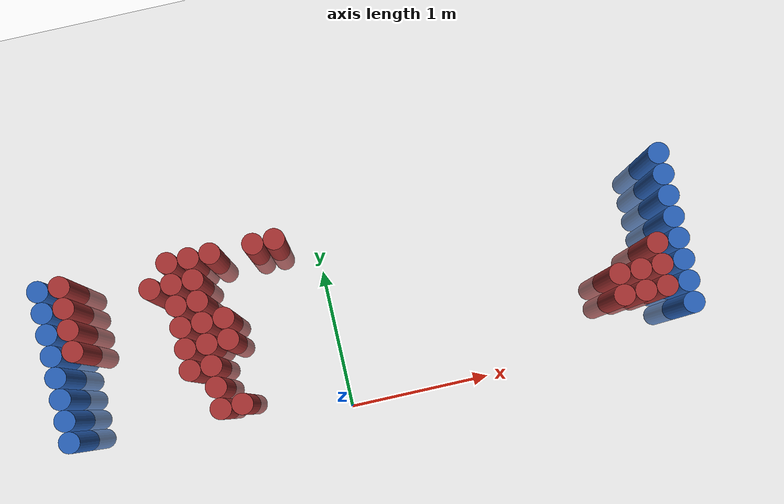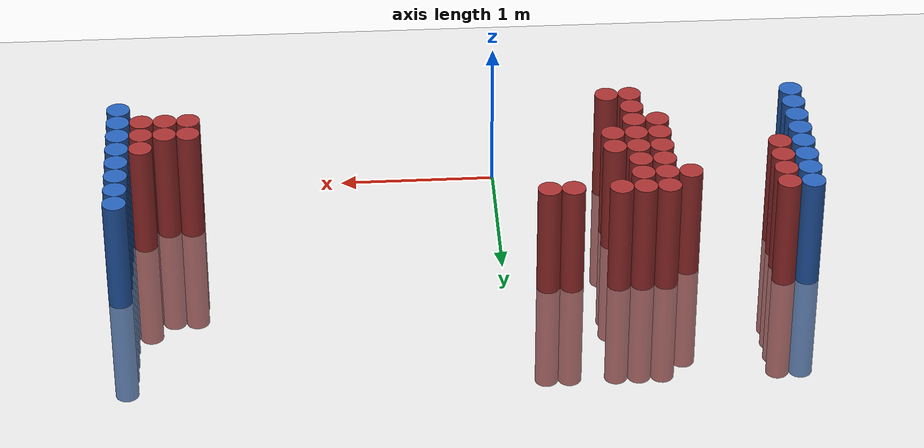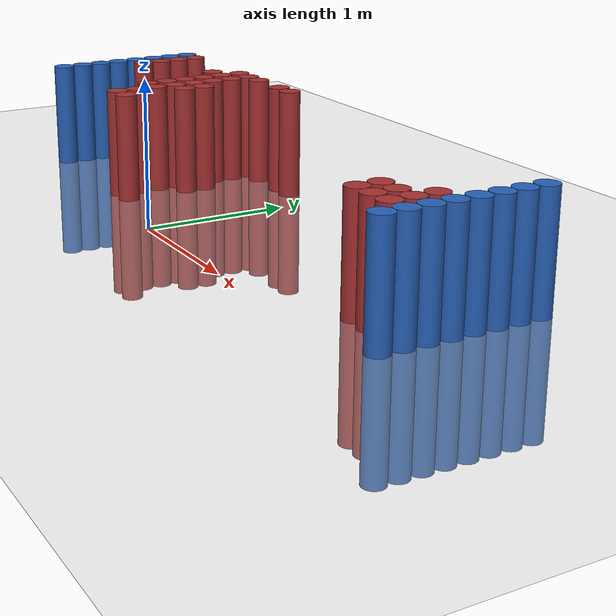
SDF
<sdf version="1.6">
 <world name="default">
  <model name="ground_plane">
   <static>1</static>
   <link name="link">
    <collision name="collision">
     <geometry><plane><normal>0 0 1</normal><size>100 100</size></plane></geometry>
     <surface><friction><ode><mu>100</mu><mu2>50</mu2></ode></friction></surface>
    </collision>
    <visual name="visual">
     <cast_shadows>0</cast_shadows>
     <geometry><plane><normal>0 0 1</normal><size>100 100</size></plane></geometry>
     <material>
      <script><uri>file://media/materials/scripts/gazebo.material</uri><name>Gazebo/Grey</name></script>
     </material>
    </visual>
   </link>
  </model>
  <model name="unit_cylinder_96">
   <static>1</static>
   <pose>-1.925000 0.175000 0.000000 0.000000 0.000000 0.000000</pose>
   <link name="link">
    <inertial>
     <mass>1</mass>
     <inertia><ixx>0.145833</ixx><ixy>0</ixy><ixz>0</ixz><iyy>0.145833</iyy><iyz>0</iyz><izz>0.125</izz></inertia>
    </inertial>
    <collision name="collision">
     <geometry><cylinder><radius>0.075000</radius><length>1.5</length></cylinder></geometry>
    </collision>
    <visual name="visual">
     <geometry><cylinder><radius>0.075000</radius><length>1.5</length></cylinder></geometry>
     <material>
      <ambient>0.152000 0.379000 0.720000 1</ambient>
      <diffuse>0.152000 0.379000 0.720000 1</diffuse>
     </material>
     <material>
      <script><name>Gazebo/Grey</name><uri>file://media/materials/scripts/gazebo.material</uri></script>
     </material>
    </visual>
   </link>
  </model>
  <model name="unit_cylinder_97">
   <static>1</static>
   <pose>-1.925000 0.325000 0.000000 0.000000 0.000000 0.000000</pose>
   <link name="link">
    <inertial>
     <mass>1</mass>
     <inertia><ixx>0.145833</ixx><ixy>0</ixy><ixz>0</ixz><iyy>0.145833</iyy><iyz>0</iyz><izz>0.125</izz></inertia>
    </inertial>
    <collision name="collision">
     <geometry><cylinder><radius>0.075000</radius><length>1.5</length></cylinder></geometry>
    </collision>
    <visual name="visual">
     <geometry><cylinder><radius>0.075000</radius><length>1.5</length></cylinder></geometry>
     <material>
      <ambient>0.152000 0.379000 0.720000 1</ambient>
      <diffuse>0.152000 0.379000 0.720000 1</diffuse>
     </material>
     <material>
      <script><name>Gazebo/Grey</name><uri>file://media/materials/scripts/gazebo.material</uri></script>
     </material>
    </visual>
   </link>
  </model>
  <model name="unit_cylinder_98">
   <static>1</static>
   <pose>-1.925000 0.475000 0.000000 0.000000 0.000000 0.000000</pose>
   <link name="link">
    <inertial>
     <mass>1</mass>
     <inertia><ixx>0.145833</ixx><ixy>0</ixy><ixz>0</ixz><iyy>0.145833</iyy><iyz>0</iyz><izz>0.125</izz></inertia>
    </inertial>
    <collision name="collision">
     <geometry><cylinder><radius>0.075000</radius><length>1.5</length></cylinder></geometry>
    </collision>
    <visual name="visual">
     <geometry><cylinder><radius>0.075000</radius><length>1.5</length></cylinder></geometry>
     <material>
      <ambient>0.152000 0.379000 0.720000 1</ambient>
      <diffuse>0.152000 0.379000 0.720000 1</diffuse>
     </material>
     <material>
      <script><name>Gazebo/Grey</name><uri>file://media/materials/scripts/gazebo.material</uri></script>
     </material>
    </visual>
   </link>
  </model>
  <model name="unit_cylinder_99">
   <static>1</static>
   <pose>-1.925000 0.625000 0.000000 0.000000 0.000000 0.000000</pose>
   <link name="link">
    <inertial>
     <mass>1</mass>
     <inertia><ixx>0.145833</ixx><ixy>0</ixy><ixz>0</ixz><iyy>0.145833</iyy><iyz>0</iyz><izz>0.125</izz></inertia>
    </inertial>
    <collision name="collision">
     <geometry><cylinder><radius>0.075000</radius><length>1.5</length></cylinder></geometry>
    </collision>
    <visual name="visual">
     <geometry><cylinder><radius>0.075000</radius><length>1.5</length></cylinder></geometry>
     <material>
      <ambient>0.152000 0.379000 0.720000 1</ambient>
      <diffuse>0.152000 0.379000 0.720000 1</diffuse>
     </material>
     <material>
      <script><name>Gazebo/Grey</name><uri>file://media/materials/scripts/gazebo.material</uri></script>
     </material>
    </visual>
   </link>
  </model>
  <model name="unit_cylinder_100">
   <static>1</static>
   <pose>-1.925000 0.775000 0.000000 0.000000 0.000000 0.000000</pose>
   <link name="link">
    <inertial>
     <mass>1</mass>
     <inertia><ixx>0.145833</ixx><ixy>0</ixy><ixz>0</ixz><iyy>0.145833</iyy><iyz>0</iyz><izz>0.125</izz></inertia>
    </inertial>
    <collision name="collision">
     <geometry><cylinder><radius>0.075000</radius><length>1.5</length></cylinder></geometry>
    </collision>
    <visual name="visual">
     <geometry><cylinder><radius>0.075000</radius><length>1.5</length></cylinder></geometry>
     <material>
      <ambient>0.152000 0.379000 0.720000 1</ambient>
      <diffuse>0.152000 0.379000 0.720000 1</diffuse>
     </material>
     <material>
      <script><name>Gazebo/Grey</name><uri>file://media/materials/scripts/gazebo.material</uri></script>
     </material>
    </visual>
   </link>
  </model>
  <model name="unit_cylinder_101">
   <static>1</static>
   <pose>-1.925000 0.925000 0.000000 0.000000 0.000000 0.000000</pose>
   <link name="link">
    <inertial>
     <mass>1</mass>
     <inertia><ixx>0.145833</ixx><ixy>0</ixy><ixz>0</ixz><iyy>0.145833</iyy><iyz>0</iyz><izz>0.125</izz></inertia>
    </inertial>
    <collision name="collision">
     <geometry><cylinder><radius>0.075000</radius><length>1.5</length></cylinder></geometry>
    </collision>
    <visual name="visual">
     <geometry><cylinder><radius>0.075000</radius><length>1.5</length></cylinder></geometry>
     <material>
      <ambient>0.152000 0.379000 0.720000 1</ambient>
      <diffuse>0.152000 0.379000 0.720000 1</diffuse>
     </material>
     <material>
      <script><name>Gazebo/Grey</name><uri>file://media/materials/scripts/gazebo.material</uri></script>
     </material>
    </visual>
   </link>
  </model>
  <model name="unit_cylinder_102">
   <static>1</static>
   <pose>-1.925000 1.075000 0.000000 0.000000 0.000000 0.000000</pose>
   <link name="link">
    <inertial>
     <mass>1</mass>
     <inertia><ixx>0.145833</ixx><ixy>0</ixy><ixz>0</ixz><iyy>0.145833</iyy><iyz>0</iyz><izz>0.125</izz></inertia>
    </inertial>
    <collision name="collision">
     <geometry><cylinder><radius>0.075000</radius><length>1.5</length></cylinder></geometry>
    </collision>
    <visual name="visual">
     <geometry><cylinder><radius>0.075000</radius><length>1.5</length></cylinder></geometry>
     <material>
      <ambient>0.152000 0.379000 0.720000 1</ambient>
      <diffuse>0.152000 0.379000 0.720000 1</diffuse>
     </material>
     <material>
      <script><name>Gazebo/Grey</name><uri>file://media/materials/scripts/gazebo.material</uri></script>
     </material>
    </visual>
   </link>
  </model>
  <model name="unit_cylinder_103">
   <static>1</static>
   <pose>-1.925000 1.225000 0.000000 0.000000 0.000000 0.000000</pose>
   <link name="link">
    <inertial>
     <mass>1</mass>
     <inertia><ixx>0.145833</ixx><ixy>0</ixy><ixz>0</ixz><iyy>0.145833</iyy><iyz>0</iyz><izz>0.125</izz></inertia>
    </inertial>
    <collision name="collision">
     <geometry><cylinder><radius>0.075000</radius><length>1.5</length></cylinder></geometry>
    </collision>
    <visual name="visual">
     <geometry><cylinder><radius>0.075000</radius><length>1.5</length></cylinder></geometry>
     <material>
      <ambient>0.152000 0.379000 0.720000 1</ambient>
      <diffuse>0.152000 0.379000 0.720000 1</diffuse>
     </material>
     <material>
      <script><name>Gazebo/Grey</name><uri>file://media/materials/scripts/gazebo.material</uri></script>
     </material>
    </visual>
   </link>
  </model>
  <model name="unit_cylinder_126">
   <static>1</static>
   <pose>-1.775000 0.775000 0.000000 0.000000 0.000000 0.000000</pose>
   <link name="link">
    <inertial>
     <mass>1</mass>
     <inertia><ixx>0.145833</ixx><ixy>0</ixy><ixz>0</ixz><iyy>0.145833</iyy><iyz>0</iyz><izz>0.125</izz></inertia>
    </inertial>
    <collision name="collision">
     <geometry><cylinder><radius>0.075000</radius><length>1.5</length></cylinder></geometry>
    </collision>
    <visual name="visual">
     <geometry><cylinder><radius>0.075000</radius><length>1.5</length></cylinder></geometry>
     <material>
      <ambient>0.648000 0.192000 0.192000 1</ambient>
      <diffuse>0.648000 0.192000 0.192000 1</diffuse>
     </material>
     <material>
      <script><name>Gazebo/Grey</name><uri>file://media/materials/scripts/gazebo.material</uri></script>
     </material>
    </visual>
   </link>
  </model>
  <model name="unit_cylinder_127">
   <static>1</static>
   <pose>-1.775000 0.925000 0.000000 0.000000 0.000000 0.000000</pose>
   <link name="link">
    <inertial>
     <mass>1</mass>
     <inertia><ixx>0.145833</ixx><ixy>0</ixy><ixz>0</ixz><iyy>0.145833</iyy><iyz>0</iyz><izz>0.125</izz></inertia>
    </inertial>
    <collision name="collision">
     <geometry><cylinder><radius>0.075000</radius><length>1.5</length></cylinder></geometry>
    </collision>
    <visual name="visual">
     <geometry><cylinder><radius>0.075000</radius><length>1.5</length></cylinder></geometry>
     <material>
      <ambient>0.648000 0.192000 0.192000 1</ambient>
      <diffuse>0.648000 0.192000 0.192000 1</diffuse>
     </material>
     <material>
      <script><name>Gazebo/Grey</name><uri>file://media/materials/scripts/gazebo.material</uri></script>
     </material>
    </visual>
   </link>
  </model>
  <model name="unit_cylinder_128">
   <static>1</static>
   <pose>-1.775000 1.075000 0.000000 0.000000 0.000000 0.000000</pose>
   <link name="link">
    <inertial>
     <mass>1</mass>
     <inertia><ixx>0.145833</ixx><ixy>0</ixy><ixz>0</ixz><iyy>0.145833</iyy><iyz>0</iyz><izz>0.125</izz></inertia>
    </inertial>
    <collision name="collision">
     <geometry><cylinder><radius>0.075000</radius><length>1.5</length></cylinder></geometry>
    </collision>
    <visual name="visual">
     <geometry><cylinder><radius>0.075000</radius><length>1.5</length></cylinder></geometry>
     <material>
      <ambient>0.648000 0.192000 0.192000 1</ambient>
      <diffuse>0.648000 0.192000 0.192000 1</diffuse>
     </material>
     <material>
      <script><name>Gazebo/Grey</name><uri>file://media/materials/scripts/gazebo.material</uri></script>
     </material>
    </visual>
   </link>
  </model>
  <model name="unit_cylinder_129">
   <static>1</static>
   <pose>-1.775000 1.225000 0.000000 0.000000 0.000000 0.000000</pose>
   <link name="link">
    <inertial>
     <mass>1</mass>
     <inertia><ixx>0.145833</ixx><ixy>0</ixy><ixz>0</ixz><iyy>0.145833</iyy><iyz>0</iyz><izz>0.125</izz></inertia>
    </inertial>
    <collision name="collision">
     <geometry><cylinder><radius>0.075000</radius><length>1.5</length></cylinder></geometry>
    </collision>
    <visual name="visual">
     <geometry><cylinder><radius>0.075000</radius><length>1.5</length></cylinder></geometry>
     <material>
      <ambient>0.648000 0.192000 0.192000 1</ambient>
      <diffuse>0.648000 0.192000 0.192000 1</diffuse>
     </material>
     <material>
      <script><name>Gazebo/Grey</name><uri>file://media/materials/scripts/gazebo.material</uri></script>
     </material>
    </visual>
   </link>
  </model>
  <model name="unit_cylinder_139">
   <static>1</static>
   <pose>-1.175000 1.075000 0.000000 0.000000 0.000000 0.000000</pose>
   <link name="link">
    <inertial>
     <mass>1</mass>
     <inertia><ixx>0.145833</ixx><ixy>0</ixy><ixz>0</ixz><iyy>0.145833</iyy><iyz>0</iyz><izz>0.125</izz></inertia>
    </inertial>
    <collision name="collision">
     <geometry><cylinder><radius>0.075000</radius><length>1.5</length></cylinder></geometry>
    </collision>
    <visual name="visual">
     <geometry><cylinder><radius>0.075000</radius><length>1.5</length></cylinder></geometry>
     <material>
      <ambient>0.648000 0.192000 0.192000 1</ambient>
      <diffuse>0.648000 0.192000 0.192000 1</diffuse>
     </material>
     <material>
      <script><name>Gazebo/Grey</name><uri>file://media/materials/scripts/gazebo.material</uri></script>
     </material>
    </visual>
   </link>
  </model>
  <model name="unit_cylinder_140">
   <static>1</static>
   <pose>-1.025000 0.475000 0.000000 0.000000 0.000000 0.000000</pose>
   <link name="link">
    <inertial>
     <mass>1</mass>
     <inertia><ixx>0.145833</ixx><ixy>0</ixy><ixz>0</ixz><iyy>0.145833</iyy><iyz>0</iyz><izz>0.125</izz></inertia>
    </inertial>
    <collision name="collision">
     <geometry><cylinder><radius>0.075000</radius><length>1.5</length></cylinder></geometry>
    </collision>
    <visual name="visual">
     <geometry><cylinder><radius>0.075000</radius><length>1.5</length></cylinder></geometry>
     <material>
      <ambient>0.648000 0.192000 0.192000 1</ambient>
      <diffuse>0.648000 0.192000 0.192000 1</diffuse>
     </material>
     <material>
      <script><name>Gazebo/Grey</name><uri>file://media/materials/scripts/gazebo.material</uri></script>
     </material>
    </visual>
   </link>
  </model>
  <model name="unit_cylinder_141">
   <static>1</static>
   <pose>-1.025000 0.625000 0.000000 0.000000 0.000000 0.000000</pose>
   <link name="link">
    <inertial>
     <mass>1</mass>
     <inertia><ixx>0.145833</ixx><ixy>0</ixy><ixz>0</ixz><iyy>0.145833</iyy><iyz>0</iyz><izz>0.125</izz></inertia>
    </inertial>
    <collision name="collision">
     <geometry><cylinder><radius>0.075000</radius><length>1.5</length></cylinder></geometry>
    </collision>
    <visual name="visual">
     <geometry><cylinder><radius>0.075000</radius><length>1.5</length></cylinder></geometry>
     <material>
      <ambient>0.648000 0.192000 0.192000 1</ambient>
      <diffuse>0.648000 0.192000 0.192000 1</diffuse>
     </material>
     <material>
      <script><name>Gazebo/Grey</name><uri>file://media/materials/scripts/gazebo.material</uri></script>
     </material>
    </visual>
   </link>
  </model>
  <model name="unit_cylinder_142">
   <static>1</static>
   <pose>-1.025000 0.775000 0.000000 0.000000 0.000000 0.000000</pose>
   <link name="link">
    <inertial>
     <mass>1</mass>
     <inertia><ixx>0.145833</ixx><ixy>0</ixy><ixz>0</ixz><iyy>0.145833</iyy><iyz>0</iyz><izz>0.125</izz></inertia>
    </inertial>
    <collision name="collision">
     <geometry><cylinder><radius>0.075000</radius><length>1.5</length></cylinder></geometry>
    </collision>
    <visual name="visual">
     <geometry><cylinder><radius>0.075000</radius><length>1.5</length></cylinder></geometry>
     <material>
      <ambient>0.648000 0.192000 0.192000 1</ambient>
      <diffuse>0.648000 0.192000 0.192000 1</diffuse>
     </material>
     <material>
      <script><name>Gazebo/Grey</name><uri>file://media/materials/scripts/gazebo.material</uri></script>
     </material>
    </visual>
   </link>
  </model>
  <model name="unit_cylinder_143">
   <static>1</static>
   <pose>-1.025000 0.925000 0.000000 0.000000 0.000000 0.000000</pose>
   <link name="link">
    <inertial>
     <mass>1</mass>
     <inertia><ixx>0.145833</ixx><ixy>0</ixy><ixz>0</ixz><iyy>0.145833</iyy><iyz>0</iyz><izz>0.125</izz></inertia>
    </inertial>
    <collision name="collision">
     <geometry><cylinder><radius>0.075000</radius><length>1.5</length></cylinder></geometry>
    </collision>
    <visual name="visual">
     <geometry><cylinder><radius>0.075000</radius><length>1.5</length></cylinder></geometry>
     <material>
      <ambient>0.648000 0.192000 0.192000 1</ambient>
      <diffuse>0.648000 0.192000 0.192000 1</diffuse>
     </material>
     <material>
      <script><name>Gazebo/Grey</name><uri>file://media/materials/scripts/gazebo.material</uri></script>
     </material>
    </visual>
   </link>
  </model>
  <model name="unit_cylinder_144">
   <static>1</static>
   <pose>-1.025000 1.075000 0.000000 0.000000 0.000000 0.000000</pose>
   <link name="link">
    <inertial>
     <mass>1</mass>
     <inertia><ixx>0.145833</ixx><ixy>0</ixy><ixz>0</ixz><iyy>0.145833</iyy><iyz>0</iyz><izz>0.125</izz></inertia>
    </inertial>
    <collision name="collision">
     <geometry><cylinder><radius>0.075000</radius><length>1.5</length></cylinder></geometry>
    </collision>
    <visual name="visual">
     <geometry><cylinder><radius>0.075000</radius><length>1.5</length></cylinder></geometry>
     <material>
      <ambient>0.648000 0.192000 0.192000 1</ambient>
      <diffuse>0.648000 0.192000 0.192000 1</diffuse>
     </material>
     <material>
      <script><name>Gazebo/Grey</name><uri>file://media/materials/scripts/gazebo.material</uri></script>
     </material>
    </visual>
   </link>
  </model>
  <model name="unit_cylinder_145">
   <static>1</static>
   <pose>-1.025000 1.225000 0.000000 0.000000 0.000000 0.000000</pose>
   <link name="link">
    <inertial>
     <mass>1</mass>
     <inertia><ixx>0.145833</ixx><ixy>0</ixy><ixz>0</ixz><iyy>0.145833</iyy><iyz>0</iyz><izz>0.125</izz></inertia>
    </inertial>
    <collision name="collision">
     <geometry><cylinder><radius>0.075000</radius><length>1.5</length></cylinder></geometry>
    </collision>
    <visual name="visual">
     <geometry><cylinder><radius>0.075000</radius><length>1.5</length></cylinder></geometry>
     <material>
      <ambient>0.648000 0.192000 0.192000 1</ambient>
      <diffuse>0.648000 0.192000 0.192000 1</diffuse>
     </material>
     <material>
      <script><name>Gazebo/Grey</name><uri>file://media/materials/scripts/gazebo.material</uri></script>
     </material>
    </visual>
   </link>
  </model>
  <model name="unit_cylinder_147">
   <static>1</static>
   <pose>-0.875000 0.175000 0.000000 0.000000 0.000000 0.000000</pose>
   <link name="link">
    <inertial>
     <mass>1</mass>
     <inertia><ixx>0.145833</ixx><ixy>0</ixy><ixz>0</ixz><iyy>0.145833</iyy><iyz>0</iyz><izz>0.125</izz></inertia>
    </inertial>
    <collision name="collision">
     <geometry><cylinder><radius>0.075000</radius><length>1.5</length></cylinder></geometry>
    </collision>
    <visual name="visual">
     <geometry><cylinder><radius>0.075000</radius><length>1.5</length></cylinder></geometry>
     <material>
      <ambient>0.648000 0.192000 0.192000 1</ambient>
      <diffuse>0.648000 0.192000 0.192000 1</diffuse>
     </material>
     <material>
      <script><name>Gazebo/Grey</name><uri>file://media/materials/scripts/gazebo.material</uri></script>
     </material>
    </visual>
   </link>
  </model>
  <model name="unit_cylinder_148">
   <static>1</static>
   <pose>-0.875000 0.325000 0.000000 0.000000 0.000000 0.000000</pose>
   <link name="link">
    <inertial>
     <mass>1</mass>
     <inertia><ixx>0.145833</ixx><ixy>0</ixy><ixz>0</ixz><iyy>0.145833</iyy><iyz>0</iyz><izz>0.125</izz></inertia>
    </inertial>
    <collision name="collision">
     <geometry><cylinder><radius>0.075000</radius><length>1.5</length></cylinder></geometry>
    </collision>
    <visual name="visual">
     <geometry><cylinder><radius>0.075000</radius><length>1.5</length></cylinder></geometry>
     <material>
      <ambient>0.648000 0.192000 0.192000 1</ambient>
      <diffuse>0.648000 0.192000 0.192000 1</diffuse>
     </material>
     <material>
      <script><name>Gazebo/Grey</name><uri>file://media/materials/scripts/gazebo.material</uri></script>
     </material>
    </visual>
   </link>
  </model>
  <model name="unit_cylinder_149">
   <static>1</static>
   <pose>-0.875000 0.475000 0.000000 0.000000 0.000000 0.000000</pose>
   <link name="link">
    <inertial>
     <mass>1</mass>
     <inertia><ixx>0.145833</ixx><ixy>0</ixy><ixz>0</ixz><iyy>0.145833</iyy><iyz>0</iyz><izz>0.125</izz></inertia>
    </inertial>
    <collision name="collision">
     <geometry><cylinder><radius>0.075000</radius><length>1.5</length></cylinder></geometry>
    </collision>
    <visual name="visual">
     <geometry><cylinder><radius>0.075000</radius><length>1.5</length></cylinder></geometry>
     <material>
      <ambient>0.648000 0.192000 0.192000 1</ambient>
      <diffuse>0.648000 0.192000 0.192000 1</diffuse>
     </material>
     <material>
      <script><name>Gazebo/Grey</name><uri>file://media/materials/scripts/gazebo.material</uri></script>
     </material>
    </visual>
   </link>
  </model>
  <model name="unit_cylinder_150">
   <static>1</static>
   <pose>-0.875000 0.625000 0.000000 0.000000 0.000000 0.000000</pose>
   <link name="link">
    <inertial>
     <mass>1</mass>
     <inertia><ixx>0.145833</ixx><ixy>0</ixy><ixz>0</ixz><iyy>0.145833</iyy><iyz>0</iyz><izz>0.125</izz></inertia>
    </inertial>
    <collision name="collision">
     <geometry><cylinder><radius>0.075000</radius><length>1.5</length></cylinder></geometry>
    </collision>
    <visual name="visual">
     <geometry><cylinder><radius>0.075000</radius><length>1.5</length></cylinder></geometry>
     <material>
      <ambient>0.648000 0.192000 0.192000 1</ambient>
      <diffuse>0.648000 0.192000 0.192000 1</diffuse>
     </material>
     <material>
      <script><name>Gazebo/Grey</name><uri>file://media/materials/scripts/gazebo.material</uri></script>
     </material>
    </visual>
   </link>
  </model>
  <model name="unit_cylinder_151">
   <static>1</static>
   <pose>-0.875000 0.775000 0.000000 0.000000 0.000000 0.000000</pose>
   <link name="link">
    <inertial>
     <mass>1</mass>
     <inertia><ixx>0.145833</ixx><ixy>0</ixy><ixz>0</ixz><iyy>0.145833</iyy><iyz>0</iyz><izz>0.125</izz></inertia>
    </inertial>
    <collision name="collision">
     <geometry><cylinder><radius>0.075000</radius><length>1.5</length></cylinder></geometry>
    </collision>
    <visual name="visual">
     <geometry><cylinder><radius>0.075000</radius><length>1.5</length></cylinder></geometry>
     <material>
      <ambient>0.648000 0.192000 0.192000 1</ambient>
      <diffuse>0.648000 0.192000 0.192000 1</diffuse>
     </material>
     <material>
      <script><name>Gazebo/Grey</name><uri>file://media/materials/scripts/gazebo.material</uri></script>
     </material>
    </visual>
   </link>
  </model>
  <model name="unit_cylinder_152">
   <static>1</static>
   <pose>-0.875000 0.925000 0.000000 0.000000 0.000000 0.000000</pose>
   <link name="link">
    <inertial>
     <mass>1</mass>
     <inertia><ixx>0.145833</ixx><ixy>0</ixy><ixz>0</ixz><iyy>0.145833</iyy><iyz>0</iyz><izz>0.125</izz></inertia>
    </inertial>
    <collision name="collision">
     <geometry><cylinder><radius>0.075000</radius><length>1.5</length></cylinder></geometry>
    </collision>
    <visual name="visual">
     <geometry><cylinder><radius>0.075000</radius><length>1.5</length></cylinder></geometry>
     <material>
      <ambient>0.648000 0.192000 0.192000 1</ambient>
      <diffuse>0.648000 0.192000 0.192000 1</diffuse>
     </material>
     <material>
      <script><name>Gazebo/Grey</name><uri>file://media/materials/scripts/gazebo.material</uri></script>
     </material>
    </visual>
   </link>
  </model>
  <model name="unit_cylinder_153">
   <static>1</static>
   <pose>-0.875000 1.075000 0.000000 0.000000 0.000000 0.000000</pose>
   <link name="link">
    <inertial>
     <mass>1</mass>
     <inertia><ixx>0.145833</ixx><ixy>0</ixy><ixz>0</ixz><iyy>0.145833</iyy><iyz>0</iyz><izz>0.125</izz></inertia>
    </inertial>
    <collision name="collision">
     <geometry><cylinder><radius>0.075000</radius><length>1.5</length></cylinder></geometry>
    </collision>
    <visual name="visual">
     <geometry><cylinder><radius>0.075000</radius><length>1.5</length></cylinder></geometry>
     <material>
      <ambient>0.648000 0.192000 0.192000 1</ambient>
      <diffuse>0.648000 0.192000 0.192000 1</diffuse>
     </material>
     <material>
      <script><name>Gazebo/Grey</name><uri>file://media/materials/scripts/gazebo.material</uri></script>
     </material>
    </visual>
   </link>
  </model>
  <model name="unit_cylinder_154">
   <static>1</static>
   <pose>-0.875000 1.225000 0.000000 0.000000 0.000000 0.000000</pose>
   <link name="link">
    <inertial>
     <mass>1</mass>
     <inertia><ixx>0.145833</ixx><ixy>0</ixy><ixz>0</ixz><iyy>0.145833</iyy><iyz>0</iyz><izz>0.125</izz></inertia>
    </inertial>
    <collision name="collision">
     <geometry><cylinder><radius>0.075000</radius><length>1.5</length></cylinder></geometry>
    </collision>
    <visual name="visual">
     <geometry><cylinder><radius>0.075000</radius><length>1.5</length></cylinder></geometry>
     <material>
      <ambient>0.648000 0.192000 0.192000 1</ambient>
      <diffuse>0.648000 0.192000 0.192000 1</diffuse>
     </material>
     <material>
      <script><name>Gazebo/Grey</name><uri>file://media/materials/scripts/gazebo.material</uri></script>
     </material>
    </visual>
   </link>
  </model>
  <model name="unit_cylinder_158">
   <static>1</static>
   <pose>-0.725000 0.175000 0.000000 0.000000 0.000000 0.000000</pose>
   <link name="link">
    <inertial>
     <mass>1</mass>
     <inertia><ixx>0.145833</ixx><ixy>0</ixy><ixz>0</ixz><iyy>0.145833</iyy><iyz>0</iyz><izz>0.125</izz></inertia>
    </inertial>
    <collision name="collision">
     <geometry><cylinder><radius>0.075000</radius><length>1.5</length></cylinder></geometry>
    </collision>
    <visual name="visual">
     <geometry><cylinder><radius>0.075000</radius><length>1.5</length></cylinder></geometry>
     <material>
      <ambient>0.648000 0.192000 0.192000 1</ambient>
      <diffuse>0.648000 0.192000 0.192000 1</diffuse>
     </material>
     <material>
      <script><name>Gazebo/Grey</name><uri>file://media/materials/scripts/gazebo.material</uri></script>
     </material>
    </visual>
   </link>
  </model>
  <model name="unit_cylinder_159">
   <static>1</static>
   <pose>-0.725000 0.625000 0.000000 0.000000 0.000000 0.000000</pose>
   <link name="link">
    <inertial>
     <mass>1</mass>
     <inertia><ixx>0.145833</ixx><ixy>0</ixy><ixz>0</ixz><iyy>0.145833</iyy><iyz>0</iyz><izz>0.125</izz></inertia>
    </inertial>
    <collision name="collision">
     <geometry><cylinder><radius>0.075000</radius><length>1.5</length></cylinder></geometry>
    </collision>
    <visual name="visual">
     <geometry><cylinder><radius>0.075000</radius><length>1.5</length></cylinder></geometry>
     <material>
      <ambient>0.648000 0.192000 0.192000 1</ambient>
      <diffuse>0.648000 0.192000 0.192000 1</diffuse>
     </material>
     <material>
      <script><name>Gazebo/Grey</name><uri>file://media/materials/scripts/gazebo.material</uri></script>
     </material>
    </visual>
   </link>
  </model>
  <model name="unit_cylinder_160">
   <static>1</static>
   <pose>-0.725000 0.775000 0.000000 0.000000 0.000000 0.000000</pose>
   <link name="link">
    <inertial>
     <mass>1</mass>
     <inertia><ixx>0.145833</ixx><ixy>0</ixy><ixz>0</ixz><iyy>0.145833</iyy><iyz>0</iyz><izz>0.125</izz></inertia>
    </inertial>
    <collision name="collision">
     <geometry><cylinder><radius>0.075000</radius><length>1.5</length></cylinder></geometry>
    </collision>
    <visual name="visual">
     <geometry><cylinder><radius>0.075000</radius><length>1.5</length></cylinder></geometry>
     <material>
      <ambient>0.648000 0.192000 0.192000 1</ambient>
      <diffuse>0.648000 0.192000 0.192000 1</diffuse>
     </material>
     <material>
      <script><name>Gazebo/Grey</name><uri>file://media/materials/scripts/gazebo.material</uri></script>
     </material>
    </visual>
   </link>
  </model>
  <model name="unit_cylinder_161">
   <static>1</static>
   <pose>-0.725000 1.225000 0.000000 0.000000 0.000000 0.000000</pose>
   <link name="link">
    <inertial>
     <mass>1</mass>
     <inertia><ixx>0.145833</ixx><ixy>0</ixy><ixz>0</ixz><iyy>0.145833</iyy><iyz>0</iyz><izz>0.125</izz></inertia>
    </inertial>
    <collision name="collision">
     <geometry><cylinder><radius>0.075000</radius><length>1.5</length></cylinder></geometry>
    </collision>
    <visual name="visual">
     <geometry><cylinder><radius>0.075000</radius><length>1.5</length></cylinder></geometry>
     <material>
      <ambient>0.648000 0.192000 0.192000 1</ambient>
      <diffuse>0.648000 0.192000 0.192000 1</diffuse>
     </material>
     <material>
      <script><name>Gazebo/Grey</name><uri>file://media/materials/scripts/gazebo.material</uri></script>
     </material>
    </visual>
   </link>
  </model>
  <model name="unit_cylinder_163">
   <static>1</static>
   <pose>-0.425000 1.225000 0.000000 0.000000 0.000000 0.000000</pose>
   <link name="link">
    <inertial>
     <mass>1</mass>
     <inertia><ixx>0.145833</ixx><ixy>0</ixy><ixz>0</ixz><iyy>0.145833</iyy><iyz>0</iyz><izz>0.125</izz></inertia>
    </inertial>
    <collision name="collision">
     <geometry><cylinder><radius>0.075000</radius><length>1.5</length></cylinder></geometry>
    </collision>
    <visual name="visual">
     <geometry><cylinder><radius>0.075000</radius><length>1.5</length></cylinder></geometry>
     <material>
      <ambient>0.648000 0.192000 0.192000 1</ambient>
      <diffuse>0.648000 0.192000 0.192000 1</diffuse>
     </material>
     <material>
      <script><name>Gazebo/Grey</name><uri>file://media/materials/scripts/gazebo.material</uri></script>
     </material>
    </visual>
   </link>
  </model>
  <model name="unit_cylinder_169">
   <static>1</static>
   <pose>-0.275000 1.225000 0.000000 0.000000 0.000000 0.000000</pose>
   <link name="link">
    <inertial>
     <mass>1</mass>
     <inertia><ixx>0.145833</ixx><ixy>0</ixy><ixz>0</ixz><iyy>0.145833</iyy><iyz>0</iyz><izz>0.125</izz></inertia>
    </inertial>
    <collision name="collision">
     <geometry><cylinder><radius>0.075000</radius><length>1.5</length></cylinder></geometry>
    </collision>
    <visual name="visual">
     <geometry><cylinder><radius>0.075000</radius><length>1.5</length></cylinder></geometry>
     <material>
      <ambient>0.648000 0.192000 0.192000 1</ambient>
      <diffuse>0.648000 0.192000 0.192000 1</diffuse>
     </material>
     <material>
      <script><name>Gazebo/Grey</name><uri>file://media/materials/scripts/gazebo.material</uri></script>
     </material>
    </visual>
   </link>
  </model>
  <model name="unit_cylinder_187">
   <static>1</static>
   <pose>1.975000 0.325000 0.000000 0.000000 0.000000 0.000000</pose>
   <link name="link">
    <inertial>
     <mass>1</mass>
     <inertia><ixx>0.145833</ixx><ixy>0</ixy><ixz>0</ixz><iyy>0.145833</iyy><iyz>0</iyz><izz>0.125</izz></inertia>
    </inertial>
    <collision name="collision">
     <geometry><cylinder><radius>0.075000</radius><length>1.5</length></cylinder></geometry>
    </collision>
    <visual name="visual">
     <geometry><cylinder><radius>0.075000</radius><length>1.5</length></cylinder></geometry>
     <material>
      <ambient>0.648000 0.192000 0.192000 1</ambient>
      <diffuse>0.648000 0.192000 0.192000 1</diffuse>
     </material>
     <material>
      <script><name>Gazebo/Grey</name><uri>file://media/materials/scripts/gazebo.material</uri></script>
     </material>
    </visual>
   </link>
  </model>
  <model name="unit_cylinder_188">
   <static>1</static>
   <pose>1.975000 0.475000 0.000000 0.000000 0.000000 0.000000</pose>
   <link name="link">
    <inertial>
     <mass>1</mass>
     <inertia><ixx>0.145833</ixx><ixy>0</ixy><ixz>0</ixz><iyy>0.145833</iyy><iyz>0</iyz><izz>0.125</izz></inertia>
    </inertial>
    <collision name="collision">
     <geometry><cylinder><radius>0.075000</radius><length>1.5</length></cylinder></geometry>
    </collision>
    <visual name="visual">
     <geometry><cylinder><radius>0.075000</radius><length>1.5</length></cylinder></geometry>
     <material>
      <ambient>0.648000 0.192000 0.192000 1</ambient>
      <diffuse>0.648000 0.192000 0.192000 1</diffuse>
     </material>
     <material>
      <script><name>Gazebo/Grey</name><uri>file://media/materials/scripts/gazebo.material</uri></script>
     </material>
    </visual>
   </link>
  </model>
  <model name="unit_cylinder_193">
   <static>1</static>
   <pose>2.125000 0.325000 0.000000 0.000000 0.000000 0.000000</pose>
   <link name="link">
    <inertial>
     <mass>1</mass>
     <inertia><ixx>0.145833</ixx><ixy>0</ixy><ixz>0</ixz><iyy>0.145833</iyy><iyz>0</iyz><izz>0.125</izz></inertia>
    </inertial>
    <collision name="collision">
     <geometry><cylinder><radius>0.075000</radius><length>1.5</length></cylinder></geometry>
    </collision>
    <visual name="visual">
     <geometry><cylinder><radius>0.075000</radius><length>1.5</length></cylinder></geometry>
     <material>
      <ambient>0.648000 0.192000 0.192000 1</ambient>
      <diffuse>0.648000 0.192000 0.192000 1</diffuse>
     </material>
     <material>
      <script><name>Gazebo/Grey</name><uri>file://media/materials/scripts/gazebo.material</uri></script>
     </material>
    </visual>
   </link>
  </model>
  <model name="unit_cylinder_194">
   <static>1</static>
   <pose>2.125000 0.475000 0.000000 0.000000 0.000000 0.000000</pose>
   <link name="link">
    <inertial>
     <mass>1</mass>
     <inertia><ixx>0.145833</ixx><ixy>0</ixy><ixz>0</ixz><iyy>0.145833</iyy><iyz>0</iyz><izz>0.125</izz></inertia>
    </inertial>
    <collision name="collision">
     <geometry><cylinder><radius>0.075000</radius><length>1.5</length></cylinder></geometry>
    </collision>
    <visual name="visual">
     <geometry><cylinder><radius>0.075000</radius><length>1.5</length></cylinder></geometry>
     <material>
      <ambient>0.648000 0.192000 0.192000 1</ambient>
      <diffuse>0.648000 0.192000 0.192000 1</diffuse>
     </material>
     <material>
      <script><name>Gazebo/Grey</name><uri>file://media/materials/scripts/gazebo.material</uri></script>
     </material>
    </visual>
   </link>
  </model>
  <model name="unit_cylinder_197">
   <static>1</static>
   <pose>2.275000 0.325000 0.000000 0.000000 0.000000 0.000000</pose>
   <link name="link">
    <inertial>
     <mass>1</mass>
     <inertia><ixx>0.145833</ixx><ixy>0</ixy><ixz>0</ixz><iyy>0.145833</iyy><iyz>0</iyz><izz>0.125</izz></inertia>
    </inertial>
    <collision name="collision">
     <geometry><cylinder><radius>0.075000</radius><length>1.5</length></cylinder></geometry>
    </collision>
    <visual name="visual">
     <geometry><cylinder><radius>0.075000</radius><length>1.5</length></cylinder></geometry>
     <material>
      <ambient>0.648000 0.192000 0.192000 1</ambient>
      <diffuse>0.648000 0.192000 0.192000 1</diffuse>
     </material>
     <material>
      <script><name>Gazebo/Grey</name><uri>file://media/materials/scripts/gazebo.material</uri></script>
     </material>
    </visual>
   </link>
  </model>
  <model name="unit_cylinder_198">
   <static>1</static>
   <pose>2.275000 0.475000 0.000000 0.000000 0.000000 0.000000</pose>
   <link name="link">
    <inertial>
     <mass>1</mass>
     <inertia><ixx>0.145833</ixx><ixy>0</ixy><ixz>0</ixz><iyy>0.145833</iyy><iyz>0</iyz><izz>0.125</izz></inertia>
    </inertial>
    <collision name="collision">
     <geometry><cylinder><radius>0.075000</radius><length>1.5</length></cylinder></geometry>
    </collision>
    <visual name="visual">
     <geometry><cylinder><radius>0.075000</radius><length>1.5</length></cylinder></geometry>
     <material>
      <ambient>0.648000 0.192000 0.192000 1</ambient>
      <diffuse>0.648000 0.192000 0.192000 1</diffuse>
     </material>
     <material>
      <script><name>Gazebo/Grey</name><uri>file://media/materials/scripts/gazebo.material</uri></script>
     </material>
    </visual>
   </link>
  </model>
  <model name="unit_cylinder_199">
   <static>1</static>
   <pose>2.275000 0.625000 0.000000 0.000000 0.000000 0.000000</pose>
   <link name="link">
    <inertial>
     <mass>1</mass>
     <inertia><ixx>0.145833</ixx><ixy>0</ixy><ixz>0</ixz><iyy>0.145833</iyy><iyz>0</iyz><izz>0.125</izz></inertia>
    </inertial>
    <collision name="collision">
     <geometry><cylinder><radius>0.075000</radius><length>1.5</length></cylinder></geometry>
    </collision>
    <visual name="visual">
     <geometry><cylinder><radius>0.075000</radius><length>1.5</length></cylinder></geometry>
     <material>
      <ambient>0.648000 0.192000 0.192000 1</ambient>
      <diffuse>0.648000 0.192000 0.192000 1</diffuse>
     </material>
     <material>
      <script><name>Gazebo/Grey</name><uri>file://media/materials/scripts/gazebo.material</uri></script>
     </material>
    </visual>
   </link>
  </model>
  <model name="unit_cylinder_209">
   <static>1</static>
   <pose>2.425000 0.175000 0.000000 0.000000 0.000000 0.000000</pose>
   <link name="link">
    <inertial>
     <mass>1</mass>
     <inertia><ixx>0.145833</ixx><ixy>0</ixy><ixz>0</ixz><iyy>0.145833</iyy><iyz>0</iyz><izz>0.125</izz></inertia>
    </inertial>
    <collision name="collision">
     <geometry><cylinder><radius>0.075000</radius><length>1.5</length></cylinder></geometry>
    </collision>
    <visual name="visual">
     <geometry><cylinder><radius>0.075000</radius><length>1.5</length></cylinder></geometry>
     <material>
      <ambient>0.152000 0.379000 0.720000 1</ambient>
      <diffuse>0.152000 0.379000 0.720000 1</diffuse>
     </material>
     <material>
      <script><name>Gazebo/Grey</name><uri>file://media/materials/scripts/gazebo.material</uri></script>
     </material>
    </visual>
   </link>
  </model>
  <model name="unit_cylinder_210">
   <static>1</static>
   <pose>2.425000 0.325000 0.000000 0.000000 0.000000 0.000000</pose>
   <link name="link">
    <inertial>
     <mass>1</mass>
     <inertia><ixx>0.145833</ixx><ixy>0</ixy><ixz>0</ixz><iyy>0.145833</iyy><iyz>0</iyz><izz>0.125</izz></inertia>
    </inertial>
    <collision name="collision">
     <geometry><cylinder><radius>0.075000</radius><length>1.5</length></cylinder></geometry>
    </collision>
    <visual name="visual">
     <geometry><cylinder><radius>0.075000</radius><length>1.5</length></cylinder></geometry>
     <material>
      <ambient>0.152000 0.379000 0.720000 1</ambient>
      <diffuse>0.152000 0.379000 0.720000 1</diffuse>
     </material>
     <material>
      <script><name>Gazebo/Grey</name><uri>file://media/materials/scripts/gazebo.material</uri></script>
     </material>
    </visual>
   </link>
  </model>
  <model name="unit_cylinder_211">
   <static>1</static>
   <pose>2.425000 0.475000 0.000000 0.000000 0.000000 0.000000</pose>
   <link name="link">
    <inertial>
     <mass>1</mass>
     <inertia><ixx>0.145833</ixx><ixy>0</ixy><ixz>0</ixz><iyy>0.145833</iyy><iyz>0</iyz><izz>0.125</izz></inertia>
    </inertial>
    <collision name="collision">
     <geometry><cylinder><radius>0.075000</radius><length>1.5</length></cylinder></geometry>
    </collision>
    <visual name="visual">
     <geometry><cylinder><radius>0.075000</radius><length>1.5</length></cylinder></geometry>
     <material>
      <ambient>0.152000 0.379000 0.720000 1</ambient>
      <diffuse>0.152000 0.379000 0.720000 1</diffuse>
     </material>
     <material>
      <script><name>Gazebo/Grey</name><uri>file://media/materials/scripts/gazebo.material</uri></script>
     </material>
    </visual>
   </link>
  </model>
  <model name="unit_cylinder_212">
   <static>1</static>
   <pose>2.425000 0.625000 0.000000 0.000000 0.000000 0.000000</pose>
   <link name="link">
    <inertial>
     <mass>1</mass>
     <inertia><ixx>0.145833</ixx><ixy>0</ixy><ixz>0</ixz><iyy>0.145833</iyy><iyz>0</iyz><izz>0.125</izz></inertia>
    </inertial>
    <collision name="collision">
     <geometry><cylinder><radius>0.075000</radius><length>1.5</length></cylinder></geometry>
    </collision>
    <visual name="visual">
     <geometry><cylinder><radius>0.075000</radius><length>1.5</length></cylinder></geometry>
     <material>
      <ambient>0.152000 0.379000 0.720000 1</ambient>
      <diffuse>0.152000 0.379000 0.720000 1</diffuse>
     </material>
     <material>
      <script><name>Gazebo/Grey</name><uri>file://media/materials/scripts/gazebo.material</uri></script>
     </material>
    </visual>
   </link>
  </model>
  <model name="unit_cylinder_213">
   <static>1</static>
   <pose>2.425000 0.775000 0.000000 0.000000 0.000000 0.000000</pose>
   <link name="link">
    <inertial>
     <mass>1</mass>
     <inertia><ixx>0.145833</ixx><ixy>0</ixy><ixz>0</ixz><iyy>0.145833</iyy><iyz>0</iyz><izz>0.125</izz></inertia>
    </inertial>
    <collision name="collision">
     <geometry><cylinder><radius>0.075000</radius><length>1.5</length></cylinder></geometry>
    </collision>
    <visual name="visual">
     <geometry><cylinder><radius>0.075000</radius><length>1.5</length></cylinder></geometry>
     <material>
      <ambient>0.152000 0.379000 0.720000 1</ambient>
      <diffuse>0.152000 0.379000 0.720000 1</diffuse>
     </material>
     <material>
      <script><name>Gazebo/Grey</name><uri>file://media/materials/scripts/gazebo.material</uri></script>
     </material>
    </visual>
   </link>
  </model>
  <model name="unit_cylinder_214">
   <static>1</static>
   <pose>2.425000 0.925000 0.000000 0.000000 0.000000 0.000000</pose>
   <link name="link">
    <inertial>
     <mass>1</mass>
     <inertia><ixx>0.145833</ixx><ixy>0</ixy><ixz>0</ixz><iyy>0.145833</iyy><iyz>0</iyz><izz>0.125</izz></inertia>
    </inertial>
    <collision name="collision">
     <geometry><cylinder><radius>0.075000</radius><length>1.5</length></cylinder></geometry>
    </collision>
    <visual name="visual">
     <geometry><cylinder><radius>0.075000</radius><length>1.5</length></cylinder></geometry>
     <material>
      <ambient>0.152000 0.379000 0.720000 1</ambient>
      <diffuse>0.152000 0.379000 0.720000 1</diffuse>
     </material>
     <material>
      <script><name>Gazebo/Grey</name><uri>file://media/materials/scripts/gazebo.material</uri></script>
     </material>
    </visual>
   </link>
  </model>
  <model name="unit_cylinder_215">
   <static>1</static>
   <pose>2.425000 1.075000 0.000000 0.000000 0.000000 0.000000</pose>
   <link name="link">
    <inertial>
     <mass>1</mass>
     <inertia><ixx>0.145833</ixx><ixy>0</ixy><ixz>0</ixz><iyy>0.145833</iyy><iyz>0</iyz><izz>0.125</izz></inertia>
    </inertial>
    <collision name="collision">
     <geometry><cylinder><radius>0.075000</radius><length>1.5</length></cylinder></geometry>
    </collision>
    <visual name="visual">
     <geometry><cylinder><radius>0.075000</radius><length>1.5</length></cylinder></geometry>
     <material>
      <ambient>0.152000 0.379000 0.720000 1</ambient>
      <diffuse>0.152000 0.379000 0.720000 1</diffuse>
     </material>
     <material>
      <script><name>Gazebo/Grey</name><uri>file://media/materials/scripts/gazebo.material</uri></script>
     </material>
    </visual>
   </link>
  </model>
  <model name="unit_cylinder_216">
   <static>1</static>
   <pose>2.425000 1.225000 0.000000 0.000000 0.000000 0.000000</pose>
   <link name="link">
    <inertial>
     <mass>1</mass>
     <inertia><ixx>0.145833</ixx><ixy>0</ixy><ixz>0</ixz><iyy>0.145833</iyy><iyz>0</iyz><izz>0.125</izz></inertia>
    </inertial>
    <collision name="collision">
     <geometry><cylinder><radius>0.075000</radius><length>1.5</length></cylinder></geometry>
    </collision>
    <visual name="visual">
     <geometry><cylinder><radius>0.075000</radius><length>1.5</length></cylinder></geometry>
     <material>
      <ambient>0.152000 0.379000 0.720000 1</ambient>
      <diffuse>0.152000 0.379000 0.720000 1</diffuse>
     </material>
     <material>
      <script><name>Gazebo/Grey</name><uri>file://media/materials/scripts/gazebo.material</uri></script>
     </material>
    </visual>
   </link>
  </model>
 </world>
</sdf>
